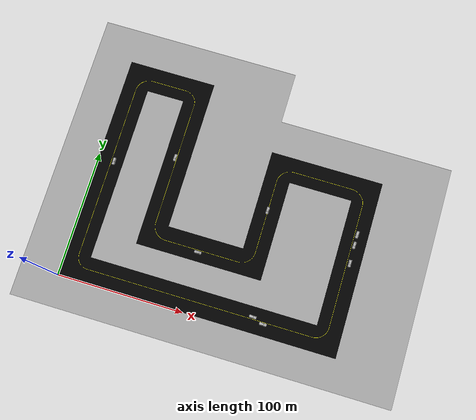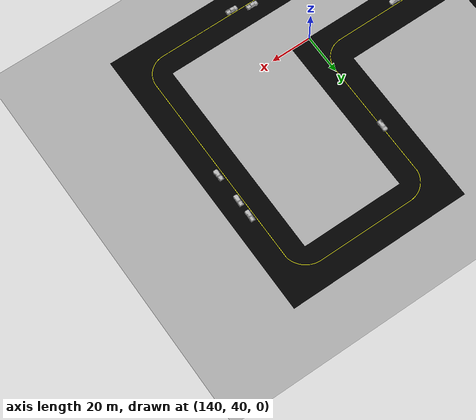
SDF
<sdf version="1.6">
 <world name="default">
  <light name="sun" type="directional">
   <pose>0 0 10 0 -0 0</pose>
   <diffuse>0.8 0.8 0.8 1</diffuse>
   <specular>0.2 0.2 0.2 1</specular>
   <attenuation>
    <range>1000</range>
    <constant>0.9</constant>
    <linear>0.01</linear>
    <quadratic>0.001</quadratic>
   </attenuation>
   <direction>-0.5 0.1 -0.9</direction>
  </light>
  <model name="LineTrack">
   <pose>0 0 1 0 -0 0</pose>
   <static>1</static>
   <link name="link">
    <inertial><mass>1000</mass></inertial>
    <collision name="collision">
     <geometry><mesh><uri>model://LineTrack/PISTA4_extended.dae</uri></mesh></geometry>
    </collision>
    <visual name="visual">
     <geometry><mesh><uri>model://LineTrack/PISTA4_updated.dae</uri></mesh></geometry>
    </visual>
   </link>
  </model>
  <gravity>0 0 -9.8</gravity>
  <magnetic_field>6e-06 2.3e-05 -4.2e-05</magnetic_field>
  <atmosphere type="adiabatic"/>
  <physics name="default_physics" default="0" type="ode">
   <max_step_size>0.001</max_step_size>
   <real_time_factor>1</real_time_factor>
   <real_time_update_rate>500</real_time_update_rate>
  </physics>
  <scene><ambient>0.4 0.4 0.4 1</ambient><background>0.7 0.7 0.7 1</background><shadows>1</shadows></scene>
  <spherical_coordinates>
   <surface_model>EARTH_WGS84</surface_model>
   <latitude_deg>0</latitude_deg>
   <longitude_deg>0</longitude_deg>
   <elevation>0</elevation>
   <heading_deg>0</heading_deg>
  </spherical_coordinates>
  <model name="pickup">
   <static>1</static>
   <link name="link">
    <collision name="collision">
     <pose>0 0 0 0 0 -1.5708</pose>
     <geometry><mesh><uri>model://pickup/meshes/pickup.dae</uri></mesh></geometry>
    </collision>
    <visual name="visual">
     <pose>0 0 0 0 0 -1.5708</pose>
     <geometry><mesh><uri>model://pickup/meshes/pickup.dae</uri></mesh></geometry>
    </visual>
   </link>
   <pose>12.8839 97.3517 1.03435 0 -0 1.58384</pose>
  </model>
  <model name="pickup_0">
   <static>1</static>
   <link name="link">
    <collision name="collision">
     <pose>0 0 0 0 0 -1.5708</pose>
     <geometry><mesh><uri>model://pickup/meshes/pickup.dae</uri></mesh></geometry>
    </collision>
    <visual name="visual">
     <pose>0 0 0 0 0 -1.5708</pose>
     <geometry><mesh><uri>model://pickup/meshes/pickup.dae</uri></mesh></geometry>
    </visual>
   </link>
   <pose>97.6914 47.2175 1.03588 0 -0 0</pose>
  </model>
  <model name="pickup_1">
   <static>1</static>
   <link name="link">
    <collision name="collision">
     <pose>0 0 0 0 0 -1.5708</pose>
     <geometry><mesh><uri>model://pickup/meshes/pickup.dae</uri></mesh></geometry>
    </collision>
    <visual name="visual">
     <pose>0 0 0 0 0 -1.5708</pose>
     <geometry><mesh><uri>model://pickup/meshes/pickup.dae</uri></mesh></geometry>
    </visual>
   </link>
   <pose>139.689 94.0372 1.02772 0 -0 1.56118</pose>
  </model>
  <model name="pickup_2">
   <static>1</static>
   <link name="link">
    <collision name="collision">
     <pose>0 0 0 0 0 -1.5708</pose>
     <geometry><mesh><uri>model://pickup/meshes/pickup.dae</uri></mesh></geometry>
    </collision>
    <visual name="visual">
     <pose>0 0 0 0 0 -1.5708</pose>
     <geometry><mesh><uri>model://pickup/meshes/pickup.dae</uri></mesh></geometry>
    </visual>
   </link>
   <pose>211.201 95.2608 1.03656 0 0 -1.60911</pose>
  </model>
  <model name="pickup_3">
   <static>1</static>
   <link name="link">
    <collision name="collision">
     <pose>0 0 0 0 0 -1.5708</pose>
     <geometry><mesh><uri>model://pickup/meshes/pickup.dae</uri></mesh></geometry>
    </collision>
    <visual name="visual">
     <pose>0 0 0 0 0 -1.5708</pose>
     <geometry><mesh><uri>model://pickup/meshes/pickup.dae</uri></mesh></geometry>
    </visual>
   </link>
   <pose>211.159 86.6876 0.999016 0 0 -1.61795</pose>
  </model>
  <model name="pickup_4">
   <static>1</static>
   <link name="link">
    <collision name="collision">
     <pose>0 0 0 0 0 -1.5708</pose>
     <geometry><mesh><uri>model://pickup/meshes/pickup.dae</uri></mesh></geometry>
    </collision>
    <visual name="visual">
     <pose>0 0 0 0 0 -1.5708</pose>
     <geometry><mesh><uri>model://pickup/meshes/pickup.dae</uri></mesh></geometry>
    </visual>
   </link>
   <pose>211.478 72.1115 1.01443 0 0 -1.54968</pose>
  </model>
  <model name="pickup_5">
   <static>1</static>
   <link name="link">
    <collision name="collision">
     <pose>0 0 0 0 0 -1.5708</pose>
     <geometry><mesh><uri>model://pickup/meshes/pickup.dae</uri></mesh></geometry>
    </collision>
    <visual name="visual">
     <pose>0 0 0 0 0 -1.5708</pose>
     <geometry><mesh><uri>model://pickup/meshes/pickup.dae</uri></mesh></geometry>
    </visual>
   </link>
   <pose>160.579 9.07141 1.02711 0 -0 3.12779</pose>
  </model>
  <model name="pickup_6">
   <static>1</static>
   <link name="link">
    <collision name="collision">
     <pose>0 0 0 0 0 -1.5708</pose>
     <geometry><mesh><uri>model://pickup/meshes/pickup.dae</uri></mesh></geometry>
    </collision>
    <visual name="visual">
     <pose>0 0 0 0 0 -1.5708</pose>
     <geometry><mesh><uri>model://pickup/meshes/pickup.dae</uri></mesh></geometry>
    </visual>
   </link>
   <pose>58.0884 113.545 1.06054 0 0 -1.58053</pose>
  </model>
  <model name="pickup_7">
   <static>1</static>
   <link name="link">
    <collision name="collision">
     <pose>0 0 0 0 0 -1.5708</pose>
     <geometry><mesh><uri>model://pickup/meshes/pickup.dae</uri></mesh></geometry>
    </collision>
    <visual name="visual">
     <pose>0 0 0 0 0 -1.5708</pose>
     <geometry><mesh><uri>model://pickup/meshes/pickup.dae</uri></mesh></geometry>
    </visual>
   </link>
   <pose>151.682 12.2137 1.0177 0 -0 3.09696</pose>
  </model>
 </world>
</sdf>
